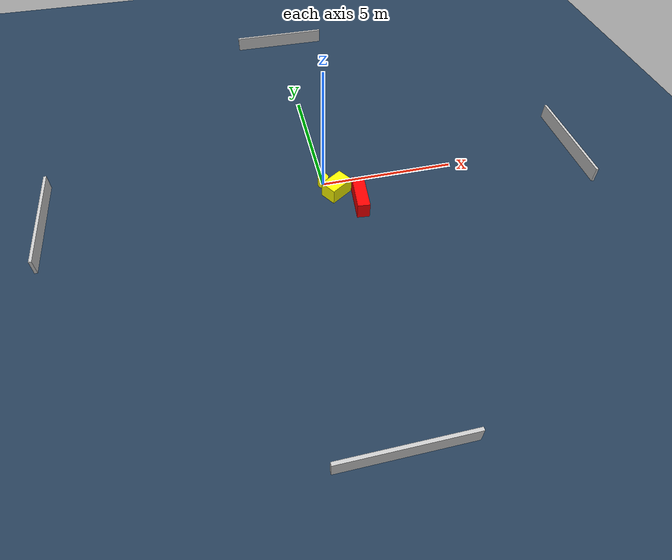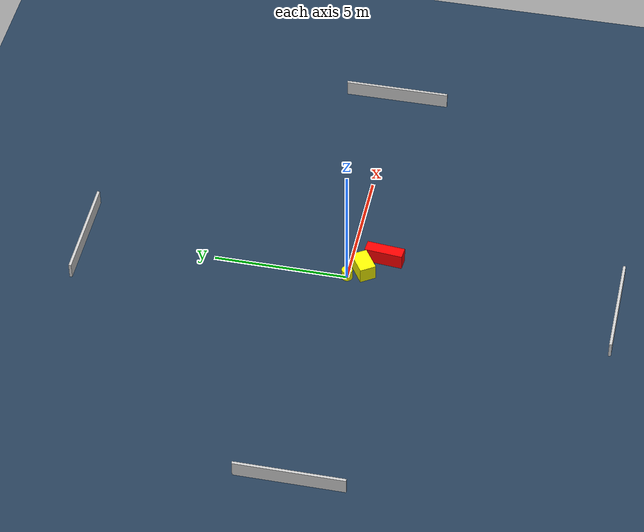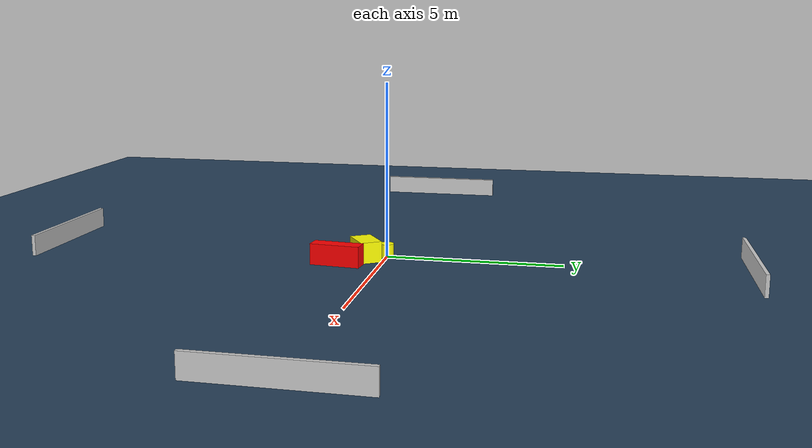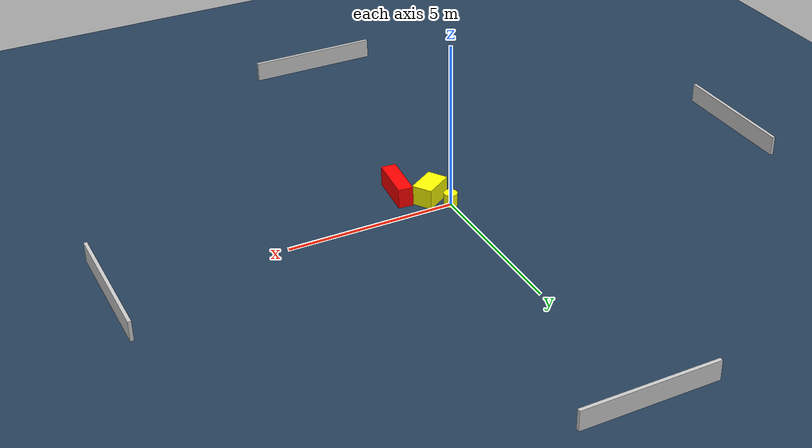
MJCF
<?xml version="1.0" ?>
<mujoco model="generated_environment">
  <option timestep="0.01" integrator="RK4" cone="elliptic"/>
  <default>
    <geom density="1"/>
  </default>
  <asset>
    <texture builtin="gradient" height="3072" name="skybox" rgb1="0.3 0.5 0.7" rgb2="0 0 0" type="skybox" width="512"/>
    <texture builtin="checker" height="300" name="groundplane" rgb1="0.2 0.3 0.4" rgb2="0.1 0.2 0.3" type="2d" width="300"/>
    <material name="groundplane" reflectance="0.2" texrepeat="5 5" texture="groundplane"/>
  </asset>
  <worldbody>
    <light dir="0 0 -1" directional="true" pos="0 0 1.5"/>
    <geom condim="3" friction="0.5 0.005 0.001" material="groundplane" name="floor" pos="0 0 0" size="0 0 0.05" type="plane"/>
    <body name="walls">
      <geom name="wall_1" condim="4" pos="-10.0 0.0 0.3" rgba="0.800000011920929 0.800000011920929 0.800000011920929 1.0" size="0.05 2.0 0.3" type="box"/>
      <geom name="wall_2" condim="4" pos="10.0 0.0 0.3" rgba="0.800000011920929 0.800000011920929 0.800000011920929 1.0" size="0.05 2.0 0.3" type="box"/>
      <geom name="wall_3" condim="4" pos="0.0 -10.0 0.3" rgba="0.800000011920929 0.800000011920929 0.800000011920929 1.0" size="2.0 0.05 0.3" type="box"/>
      <geom name="wall_4" condim="4" pos="0.0 10.0 0.3" rgba="0.800000011920929 0.800000011920929 0.800000011920929 1.0" size="2.0 0.05 0.3" type="box"/>
    </body>
    <body name="robot">
      <joint name="joint_x" type="slide" pos="0 0 0" axis="1 0 0"/>
      <joint name="joint_y" type="slide" pos="0 0 0" axis="0 1 0"/>
      <geom name="robot" type="cylinder" pos="0.0 0.0 0.2" size="0.2 0.2 0.0" mass="5.0" friction="1.0 0.005 0.0001" condim="4" rgba="1.0 1.0 0.0 1.0"/>
    </body>
    <body name="obstacle_1_movable">
      <geom name="obstacle_1_movable" condim="4" pos="0.39477751965474533 -0.532914371934204 0.3" euler="0 0 303.0439126226374" friction="0.0 0.005 0.001" rgba="1.0 1.0 0.0 1.0" size="0.30794403173175444 0.4656969217415465 0.3" type="box" mass="0.1"/>
      <joint type="free"/>
    </body>
    <body name="obstacle_2_static">
      <geom name="obstacle_2_static" condim="4" pos="1.12048031455272 -1.1957165571570114 0.3" euler="0 0 354.56882375659654" friction="0.0 0.005 0.001" rgba="1.0 0.0 0.0 1.0" size="0.22290404955306736 0.7149660237811846 0.3" type="box"/>
    </body>
  </worldbody>
  <actuator>
    <motor name="actuator_x" joint="joint_x" gear="1" ctrlrange="-1 1"/>
    <motor name="actuator_y" joint="joint_y" gear="1" ctrlrange="-1 1"/>
  </actuator>
</mujoco>
